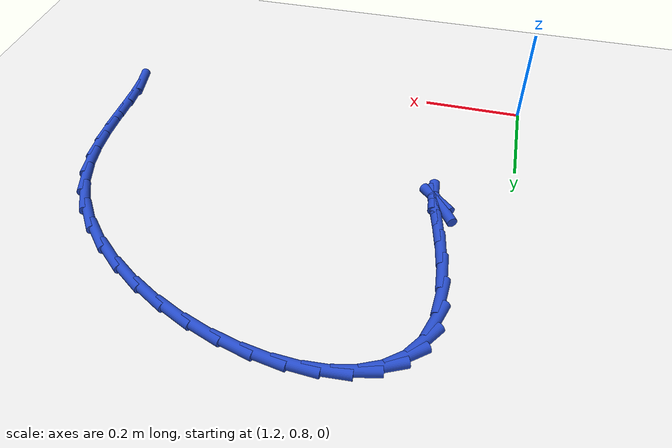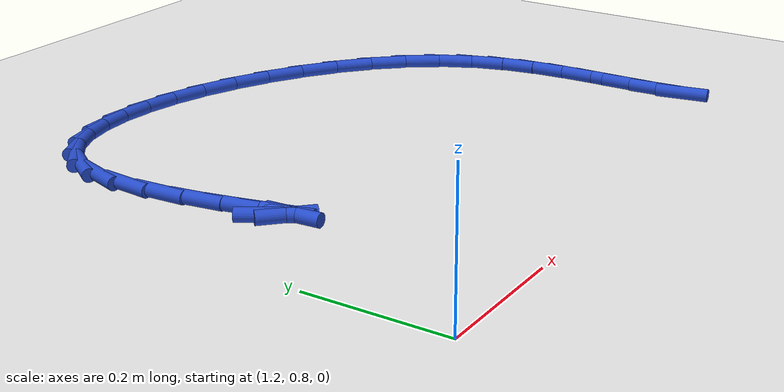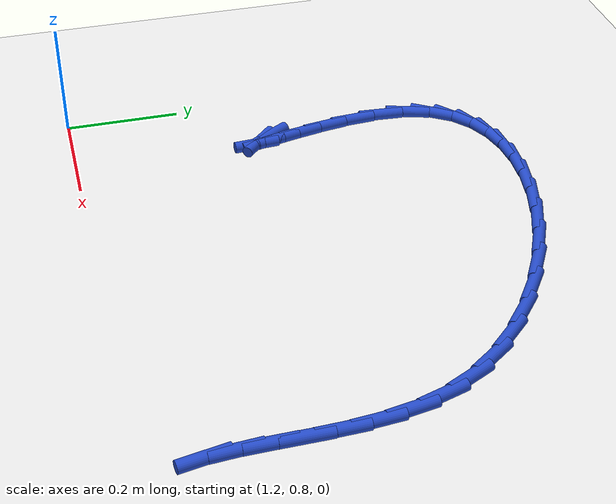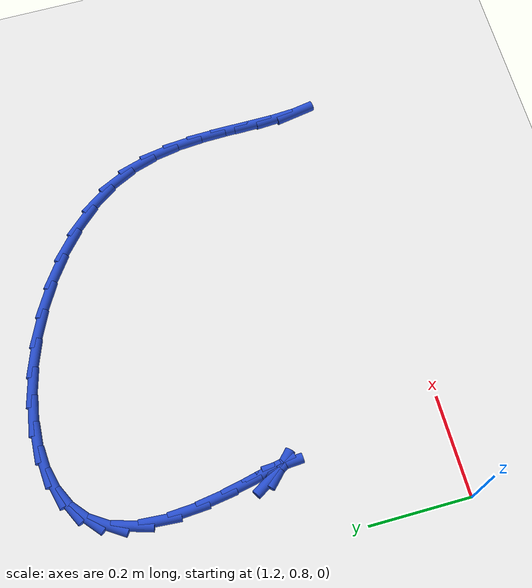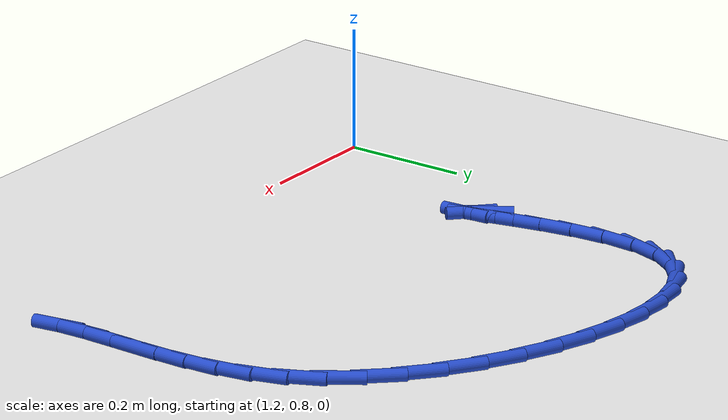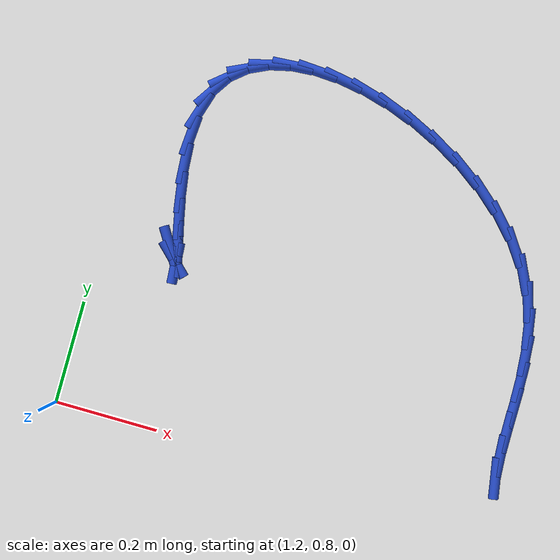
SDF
<sdf version="1.6">
 <world name="default">
  <model name="ground_plane">
   <static>1</static>
   <link name="link">
    <collision name="collision">
     <geometry><plane><normal>0 0 1</normal><size>100 100</size></plane></geometry>
     <surface><friction><ode><mu>100</mu><mu2>50</mu2></ode></friction></surface>
    </collision>
    <visual name="visual">
     <cast_shadows>0</cast_shadows>
     <geometry><plane><normal>0 0 1</normal><size>100 100</size></plane></geometry>
     <material>
      <script><uri>file://media/materials/scripts/gazebo.material</uri><name>Gazebo/WhiteGlow</name></script>
     </material>
    </visual>
   </link>
  </model>
  <model name="line">
   <link name="link_52">
    <pose>1.3296395447312575 1.1477273705580417 0.01 0 1.57 -1.0165014564160073</pose>
    <collision name="collision">
     <geometry><cylinder><radius>0.01</radius><length>0.08</length></cylinder></geometry>
    </collision>
    <visual name="visual">
     <material>
      <script><name>Gazebo/Blue</name><uri>file://media/materials/scripts/gazebo.material</uri></script>
     </material>
     <geometry><cylinder><radius>0.01</radius><length>0.08</length></cylinder></geometry>
    </visual>
   </link>
   <link name="link_53">
    <pose>1.3431704093788657 1.125869203325592 0.01 0 1.57 -0.7722796233946214</pose>
    <collision name="collision">
     <geometry><cylinder><radius>0.01</radius><length>0.08</length></cylinder></geometry>
    </collision>
    <visual name="visual">
     <material>
      <script><name>Gazebo/Blue</name><uri>file://media/materials/scripts/gazebo.material</uri></script>
     </material>
     <geometry><cylinder><radius>0.01</radius><length>0.08</length></cylinder></geometry>
    </visual>
   </link>
   <link name="link_54">
    <pose>1.3496562986925822 1.119551290834206 0.01 0 1.57 -1.5023184248114456</pose>
    <collision name="collision">
     <geometry><cylinder><radius>0.01</radius><length>0.08</length></cylinder></geometry>
    </collision>
    <visual name="visual">
     <material>
      <script><name>Gazebo/Blue</name><uri>file://media/materials/scripts/gazebo.material</uri></script>
     </material>
     <geometry><cylinder><radius>0.01</radius><length>0.08</length></cylinder></geometry>
    </visual>
   </link>
   <link name="link_55">
    <pose>1.348814385170932 1.131826741925614 0.01 0 1.57 -1.3494869806694105</pose>
    <collision name="collision">
     <geometry><cylinder><radius>0.01</radius><length>0.08</length></cylinder></geometry>
    </collision>
    <visual name="visual">
     <material>
      <script><name>Gazebo/Blue</name><uri>file://media/materials/scripts/gazebo.material</uri></script>
     </material>
     <geometry><cylinder><radius>0.01</radius><length>0.08</length></cylinder></geometry>
    </visual>
   </link>
   <link name="link_56">
    <pose>1.3422549294204558 1.1609805723535127 0.01 0 1.57 -1.3432836407676332</pose>
    <collision name="collision">
     <geometry><cylinder><radius>0.01</radius><length>0.08</length></cylinder></geometry>
    </collision>
    <visual name="visual">
     <material>
      <script><name>Gazebo/Blue</name><uri>file://media/materials/scripts/gazebo.material</uri></script>
     </material>
     <geometry><cylinder><radius>0.01</radius><length>0.08</length></cylinder></geometry>
    </visual>
   </link>
   <link name="link_57">
    <pose>1.3325629776388663 1.2028426197845807 0.01 0 1.57 -1.3704369343326024</pose>
    <collision name="collision">
     <geometry><cylinder><radius>0.01</radius><length>0.08</length></cylinder></geometry>
    </collision>
    <visual name="visual">
     <material>
      <script><name>Gazebo/Blue</name><uri>file://media/materials/scripts/gazebo.material</uri></script>
     </material>
     <geometry><cylinder><radius>0.01</radius><length>0.08</length></cylinder></geometry>
    </visual>
   </link>
   <link name="link_58">
    <pose>1.3223316334941435 1.2532224276540163 0.01 0 1.57 -1.422414729076723</pose>
    <collision name="collision">
     <geometry><cylinder><radius>0.01</radius><length>0.08</length></cylinder></geometry>
    </collision>
    <visual name="visual">
     <material>
      <script><name>Gazebo/Blue</name><uri>file://media/materials/scripts/gazebo.material</uri></script>
     </material>
     <geometry><cylinder><radius>0.01</radius><length>0.08</length></cylinder></geometry>
    </visual>
   </link>
   <link name="link_59">
    <pose>1.3141540006542662 1.30792953939702 0.01 0 1.57 -1.5065057109542699</pose>
    <collision name="collision">
     <geometry><cylinder><radius>0.01</radius><length>0.08</length></cylinder></geometry>
    </collision>
    <visual name="visual">
     <material>
      <script><name>Gazebo/Blue</name><uri>file://media/materials/scripts/gazebo.material</uri></script>
     </material>
     <geometry><cylinder><radius>0.01</radius><length>0.08</length></cylinder></geometry>
    </visual>
   </link>
   <link name="link_60">
    <pose>1.3106231827872132 1.3627734984487894 0.01 0 1.57 1.4978980653648977</pose>
    <collision name="collision">
     <geometry><cylinder><radius>0.01</radius><length>0.08</length></cylinder></geometry>
    </collision>
    <visual name="visual">
     <material>
      <script><name>Gazebo/Blue</name><uri>file://media/materials/scripts/gazebo.material</uri></script>
     </material>
     <geometry><cylinder><radius>0.01</radius><length>0.08</length></cylinder></geometry>
    </visual>
   </link>
   <link name="link_61">
    <pose>1.3143322835609634 1.4135638482445236 0.01 0 1.57 1.272125233787636</pose>
    <collision name="collision">
     <geometry><cylinder><radius>0.01</radius><length>0.08</length></cylinder></geometry>
    </collision>
    <visual name="visual">
     <material>
      <script><name>Gazebo/Blue</name><uri>file://media/materials/scripts/gazebo.material</uri></script>
     </material>
     <geometry><cylinder><radius>0.01</radius><length>0.08</length></cylinder></geometry>
    </visual>
   </link>
   <link name="link_62">
    <pose>1.3275524850675944 1.4565032015068826 0.01 0 1.57 0.9862299120974464</pose>
    <collision name="collision">
     <geometry><cylinder><radius>0.01</radius><length>0.08</length></cylinder></geometry>
    </collision>
    <visual name="visual">
     <material>
      <script><name>Gazebo/Blue</name><uri>file://media/materials/scripts/gazebo.material</uri></script>
     </material>
     <geometry><cylinder><radius>0.01</radius><length>0.08</length></cylinder></geometry>
    </visual>
   </link>
   <link name="link_63">
    <pose>1.3501783718741782 1.4906960190037257 0.01 0 1.57 0.697253401133908</pose>
    <collision name="collision">
     <geometry><cylinder><radius>0.01</radius><length>0.08</length></cylinder></geometry>
    </collision>
    <visual name="visual">
     <material>
      <script><name>Gazebo/Blue</name><uri>file://media/materials/scripts/gazebo.material</uri></script>
     </material>
     <geometry><cylinder><radius>0.01</radius><length>0.08</length></cylinder></geometry>
    </visual>
   </link>
   <link name="link_64">
    <pose>1.3810403486513816 1.5165461352166503 0.01 0 1.57 0.4413744814543036</pose>
    <collision name="collision">
     <geometry><cylinder><radius>0.01</radius><length>0.08</length></cylinder></geometry>
    </collision>
    <visual name="visual">
     <material>
      <script><name>Gazebo/Blue</name><uri>file://media/materials/scripts/gazebo.material</uri></script>
     </material>
     <geometry><cylinder><radius>0.01</radius><length>0.08</length></cylinder></geometry>
    </visual>
   </link>
   <link name="link_65">
    <pose>1.4189638221340357 1.5344634871541578 0.01 0 1.57 0.23295421601523145</pose>
    <collision name="collision">
     <geometry><cylinder><radius>0.01</radius><length>0.08</length></cylinder></geometry>
    </collision>
    <visual name="visual">
     <material>
      <script><name>Gazebo/Blue</name><uri>file://media/materials/scripts/gazebo.material</uri></script>
     </material>
     <geometry><cylinder><radius>0.01</radius><length>0.08</length></cylinder></geometry>
    </visual>
   </link>
   <link name="link_66">
    <pose>1.4627741990569696 1.544858011824748 0.01 0 1.57 0.06752809785762076</pose>
    <collision name="collision">
     <geometry><cylinder><radius>0.01</radius><length>0.08</length></cylinder></geometry>
    </collision>
    <visual name="visual">
     <material>
      <script><name>Gazebo/Blue</name><uri>file://media/materials/scripts/gazebo.material</uri></script>
     </material>
     <geometry><cylinder><radius>0.01</radius><length>0.08</length></cylinder></geometry>
    </visual>
   </link>
   <link name="link_67">
    <pose>1.5112968861550142 1.5481396462369226 0.01 0 1.57 -0.06562388815619034</pose>
    <collision name="collision">
     <geometry><cylinder><radius>0.01</radius><length>0.08</length></cylinder></geometry>
    </collision>
    <visual name="visual">
     <material>
      <script><name>Gazebo/Blue</name><uri>file://media/materials/scripts/gazebo.material</uri></script>
     </material>
     <geometry><cylinder><radius>0.01</radius><length>0.08</length></cylinder></geometry>
    </visual>
   </link>
   <link name="link_68">
    <pose>1.5633572901629997 1.5447183273991827 0.01 0 1.57 -0.17663492208632015</pose>
    <collision name="collision">
     <geometry><cylinder><radius>0.01</radius><length>0.08</length></cylinder></geometry>
    </collision>
    <visual name="visual">
     <material>
      <script><name>Gazebo/Blue</name><uri>file://media/materials/scripts/gazebo.material</uri></script>
     </material>
     <geometry><cylinder><radius>0.01</radius><length>0.08</length></cylinder></geometry>
    </visual>
   </link>
   <link name="link_69">
    <pose>1.6177808178157567 1.5350039923200287 0.01 0 1.57 -0.2734428203003848</pose>
    <collision name="collision">
     <geometry><cylinder><radius>0.01</radius><length>0.08</length></cylinder></geometry>
    </collision>
    <visual name="visual">
     <material>
      <script><name>Gazebo/Blue</name><uri>file://media/materials/scripts/gazebo.material</uri></script>
     </material>
     <geometry><cylinder><radius>0.01</radius><length>0.08</length></cylinder></geometry>
    </visual>
   </link>
   <link name="link_70">
    <pose>1.6733928758481142 1.5194065780079615 0.01 0 1.57 -0.3620890400443482</pose>
    <collision name="collision">
     <geometry><cylinder><radius>0.01</radius><length>0.08</length></cylinder></geometry>
    </collision>
    <visual name="visual">
     <material>
      <script><name>Gazebo/Blue</name><uri>file://media/materials/scripts/gazebo.material</uri></script>
     </material>
     <geometry><cylinder><radius>0.01</radius><length>0.08</length></cylinder></geometry>
    </visual>
   </link>
   <link name="link_71">
    <pose>1.7290188709949041 1.4983360214714831 0.01 0 1.57 -0.4473766975733315</pose>
    <collision name="collision">
     <geometry><cylinder><radius>0.01</radius><length>0.08</length></cylinder></geometry>
    </collision>
    <visual name="visual">
     <material>
      <script><name>Gazebo/Blue</name><uri>file://media/materials/scripts/gazebo.material</uri></script>
     </material>
     <geometry><cylinder><radius>0.01</radius><length>0.08</length></cylinder></geometry>
    </visual>
   </link>
   <link name="link_72">
    <pose>1.7834842099909567 1.4722022597190934 0.01 0 1.57 -0.5334648285504336</pose>
    <collision name="collision">
     <geometry><cylinder><radius>0.01</radius><length>0.08</length></cylinder></geometry>
    </collision>
    <visual name="visual">
     <material>
      <script><name>Gazebo/Blue</name><uri>file://media/materials/scripts/gazebo.material</uri></script>
     </material>
     <geometry><cylinder><radius>0.01</radius><length>0.08</length></cylinder></geometry>
    </visual>
   </link>
   <link name="link_73">
    <pose>1.8356142995711016 1.4414152297592935 0.01 0 1.57 -0.6243451373747428</pose>
    <collision name="collision">
     <geometry><cylinder><radius>0.01</radius><length>0.08</length></cylinder></geometry>
    </collision>
    <visual name="visual">
     <material>
      <script><name>Gazebo/Blue</name><uri>file://media/materials/scripts/gazebo.material</uri></script>
     </material>
     <geometry><cylinder><radius>0.01</radius><length>0.08</length></cylinder></geometry>
    </visual>
   </link>
   <link name="link_74">
    <pose>1.8842345464701693 1.4063848686005846 0.01 0 1.57 -0.7242175810839562</pose>
    <collision name="collision">
     <geometry><cylinder><radius>0.01</radius><length>0.08</length></cylinder></geometry>
    </collision>
    <visual name="visual">
     <material>
      <script><name>Gazebo/Blue</name><uri>file://media/materials/scripts/gazebo.material</uri></script>
     </material>
     <geometry><cylinder><radius>0.01</radius><length>0.08</length></cylinder></geometry>
    </visual>
   </link>
   <link name="link_75">
    <pose>1.92817035742299 1.3675211132514675 0.01 0 1.57 -0.8377423098663479</pose>
    <collision name="collision">
     <geometry><cylinder><radius>0.01</radius><length>0.08</length></cylinder></geometry>
    </collision>
    <visual name="visual">
     <material>
      <script><name>Gazebo/Blue</name><uri>file://media/materials/scripts/gazebo.material</uri></script>
     </material>
     <geometry><cylinder><radius>0.01</radius><length>0.08</length></cylinder></geometry>
    </visual>
   </link>
   <link name="link_76">
    <pose>1.9662471391643948 1.3252339007204432 0.01 0 1.57 -0.9700259372270136</pose>
    <collision name="collision">
     <geometry><cylinder><radius>0.01</radius><length>0.08</length></cylinder></geometry>
    </collision>
    <visual name="visual">
     <material>
      <script><name>Gazebo/Blue</name><uri>file://media/materials/scripts/gazebo.material</uri></script>
     </material>
     <geometry><cylinder><radius>0.01</radius><length>0.08</length></cylinder></geometry>
    </visual>
   </link>
   <link name="link_77">
    <pose>1.9972902984292134 1.2799331680160129 0.01 0 1.57 -1.1251586003778402</pose>
    <collision name="collision">
     <geometry><cylinder><radius>0.01</radius><length>0.08</length></cylinder></geometry>
    </collision>
    <visual name="visual">
     <material>
      <script><name>Gazebo/Blue</name><uri>file://media/materials/scripts/gazebo.material</uri></script>
     </material>
     <geometry><cylinder><radius>0.01</radius><length>0.08</length></cylinder></geometry>
    </visual>
   </link>
   <link name="link_78">
    <pose>2.0201701926653914 1.2320358334792347 0.01 0 1.57 -1.2806554762151443</pose>
    <collision name="collision">
     <geometry><cylinder><radius>0.01</radius><length>0.08</length></cylinder></geometry>
    </collision>
    <visual name="visual">
     <material>
      <script><name>Gazebo/Blue</name><uri>file://media/materials/scripts/gazebo.material</uri></script>
     </material>
     <geometry><cylinder><radius>0.01</radius><length>0.08</length></cylinder></geometry>
    </visual>
   </link>
   <link name="link_79">
    <pose>2.035061036378018 1.1821613185727535 0.01 0 1.57 -1.4046998382544418</pose>
    <collision name="collision">
     <geometry><cylinder><radius>0.01</radius><length>0.08</length></cylinder></geometry>
    </collision>
    <visual name="visual">
     <material>
      <script><name>Gazebo/Blue</name><uri>file://media/materials/scripts/gazebo.material</uri></script>
     </material>
     <geometry><cylinder><radius>0.01</radius><length>0.08</length></cylinder></geometry>
    </visual>
   </link>
   <link name="link_80">
    <pose>2.04361128006563 1.131158009574793 0.01 0 1.57 -1.4941538290474041</pose>
    <collision name="collision">
     <geometry><cylinder><radius>0.01</radius><length>0.08</length></cylinder></geometry>
    </collision>
    <visual name="visual">
     <material>
      <script><name>Gazebo/Blue</name><uri>file://media/materials/scripts/gazebo.material</uri></script>
     </material>
     <geometry><cylinder><radius>0.01</radius><length>0.08</length></cylinder></geometry>
    </visual>
   </link>
   <link name="link_81">
    <pose>2.047548561925842 1.079886591470835 0.01 0 1.57 -1.5500419618869712</pose>
    <collision name="collision">
     <geometry><cylinder><radius>0.01</radius><length>0.08</length></cylinder></geometry>
    </collision>
    <visual name="visual">
     <material>
      <script><name>Gazebo/Blue</name><uri>file://media/materials/scripts/gazebo.material</uri></script>
     </material>
     <geometry><cylinder><radius>0.01</radius><length>0.08</length></cylinder></geometry>
    </visual>
   </link>
   <link name="link_82">
    <pose>2.0486005201562643 1.0292077492463625 0.01 0 1.57 1.5686485199787221</pose>
    <collision name="collision">
     <geometry><cylinder><radius>0.01</radius><length>0.08</length></cylinder></geometry>
    </collision>
    <visual name="visual">
     <material>
      <script><name>Gazebo/Blue</name><uri>file://media/materials/scripts/gazebo.material</uri></script>
     </material>
     <geometry><cylinder><radius>0.01</radius><length>0.08</length></cylinder></geometry>
    </visual>
   </link>
   <link name="link_83">
    <pose>2.0484947929545143 0.9799821678868582 0.01 0 1.57 -1.5609009051936824</pose>
    <collision name="collision">
     <geometry><cylinder><radius>0.01</radius><length>0.08</length></cylinder></geometry>
    </collision>
    <visual name="visual">
     <material>
      <script><name>Gazebo/Blue</name><uri>file://media/materials/scripts/gazebo.material</uri></script>
     </material>
     <geometry><cylinder><radius>0.01</radius><length>0.08</length></cylinder></geometry>
    </visual>
   </link>
   <link name="link_84">
    <pose>2.0489590185182025 0.9330705323778046 0.01 0 1.57 -1.5077340648190145</pose>
    <collision name="collision">
     <geometry><cylinder><radius>0.01</radius><length>0.08</length></cylinder></geometry>
    </collision>
    <visual name="visual">
     <material>
      <script><name>Gazebo/Blue</name><uri>file://media/materials/scripts/gazebo.material</uri></script>
     </material>
     <geometry><cylinder><radius>0.01</radius><length>0.08</length></cylinder></geometry>
    </visual>
   </link>
   <link name="link_85">
    <pose>2.0517208350449443 0.8893335277046835 0.01 0 1.57 -1.401481971332941</pose>
    <collision name="collision">
     <geometry><cylinder><radius>0.01</radius><length>0.08</length></cylinder></geometry>
    </collision>
    <visual name="visual">
     <material>
      <script><name>Gazebo/Blue</name><uri>file://media/materials/scripts/gazebo.material</uri></script>
     </material>
     <geometry><cylinder><radius>0.01</radius><length>0.08</length></cylinder></geometry>
    </visual>
   </link>
  </model>
 </world>
</sdf>
